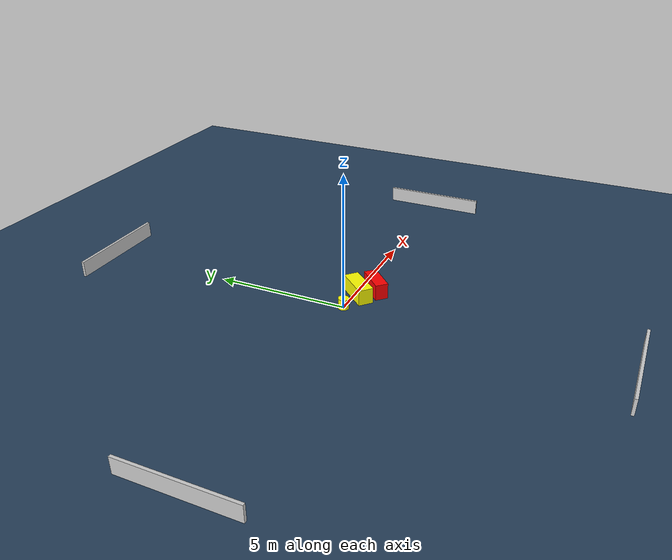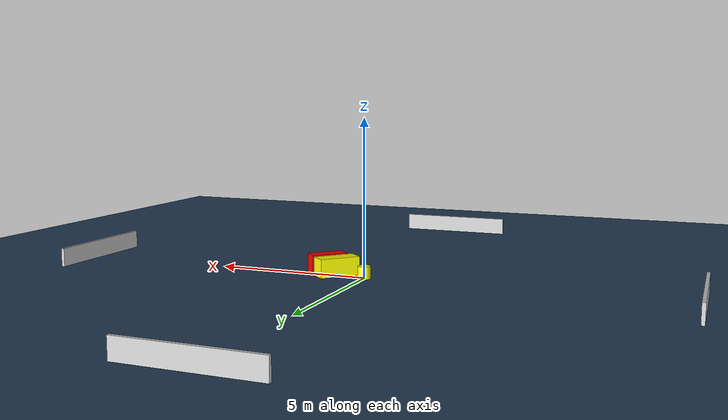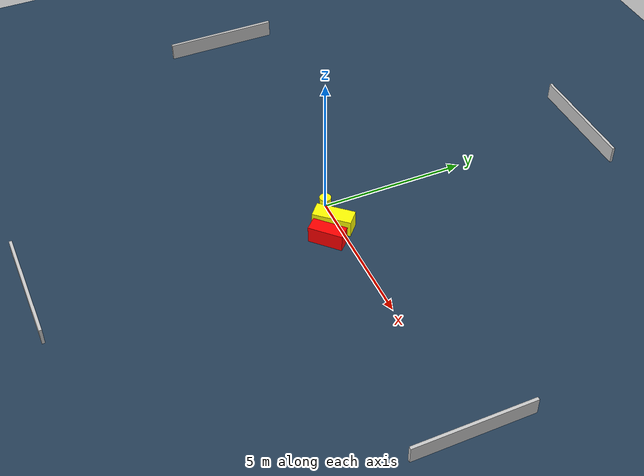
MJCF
<?xml version="1.0" ?>
<mujoco model="generated_environment">
  <option timestep="0.01" integrator="RK4" cone="elliptic"/>
  <default>
    <geom density="1"/>
  </default>
  <asset>
    <texture builtin="gradient" height="3072" name="skybox" rgb1="0.3 0.5 0.7" rgb2="0 0 0" type="skybox" width="512"/>
    <texture builtin="checker" height="300" name="groundplane" rgb1="0.2 0.3 0.4" rgb2="0.1 0.2 0.3" type="2d" width="300"/>
    <material name="groundplane" reflectance="0.2" texrepeat="5 5" texture="groundplane"/>
  </asset>
  <worldbody>
    <light dir="0 0 -1" directional="true" pos="0 0 1.5"/>
    <geom condim="3" friction="0.5 0.005 0.001" material="groundplane" name="floor" pos="0 0 0" size="0 0 0.05" type="plane"/>
    <body name="walls">
      <geom name="wall_1" condim="4" pos="-10.0 0.0 0.3" rgba="0.800000011920929 0.800000011920929 0.800000011920929 1.0" size="0.05 2.0 0.3" type="box"/>
      <geom name="wall_2" condim="4" pos="10.0 0.0 0.3" rgba="0.800000011920929 0.800000011920929 0.800000011920929 1.0" size="0.05 2.0 0.3" type="box"/>
      <geom name="wall_3" condim="4" pos="0.0 -10.0 0.3" rgba="0.800000011920929 0.800000011920929 0.800000011920929 1.0" size="2.0 0.05 0.3" type="box"/>
      <geom name="wall_4" condim="4" pos="0.0 10.0 0.3" rgba="0.800000011920929 0.800000011920929 0.800000011920929 1.0" size="2.0 0.05 0.3" type="box"/>
    </body>
    <body name="robot">
      <joint name="joint_x" type="slide" pos="0 0 0" axis="1 0 0"/>
      <joint name="joint_y" type="slide" pos="0 0 0" axis="0 1 0"/>
      <geom name="robot" type="cylinder" pos="0.0 0.0 0.2" size="0.2 0.2 0.0" mass="5.0" friction="1.0 0.005 0.0001" condim="4" rgba="1.0 1.0 0.0 1.0"/>
    </body>
    <body name="obstacle_1_movable">
      <geom name="obstacle_1_movable" condim="4" pos="0.9903973755621893 -0.1408070771057781 0.3" euler="0 0 317.74408478599867" friction="0.0 0.005 0.001" rgba="1.0 1.0 0.0 1.0" size="0.2789398625670401 0.6608519475640402 0.3" type="box" mass="0.1"/>
      <joint type="free"/>
    </body>
    <body name="obstacle_2_static">
      <geom name="obstacle_2_static" condim="4" pos="1.5291773605414067 -0.6021713159890205 0.3" euler="0 0 224.11527491696316" friction="0.0 0.005 0.001" rgba="1.0 0.0 0.0 1.0" size="0.5851756655233062 0.23923520840270324 0.3" type="box"/>
    </body>
  </worldbody>
  <actuator>
    <motor name="actuator_x" joint="joint_x" gear="1" ctrlrange="-1 1"/>
    <motor name="actuator_y" joint="joint_y" gear="1" ctrlrange="-1 1"/>
  </actuator>
</mujoco>
